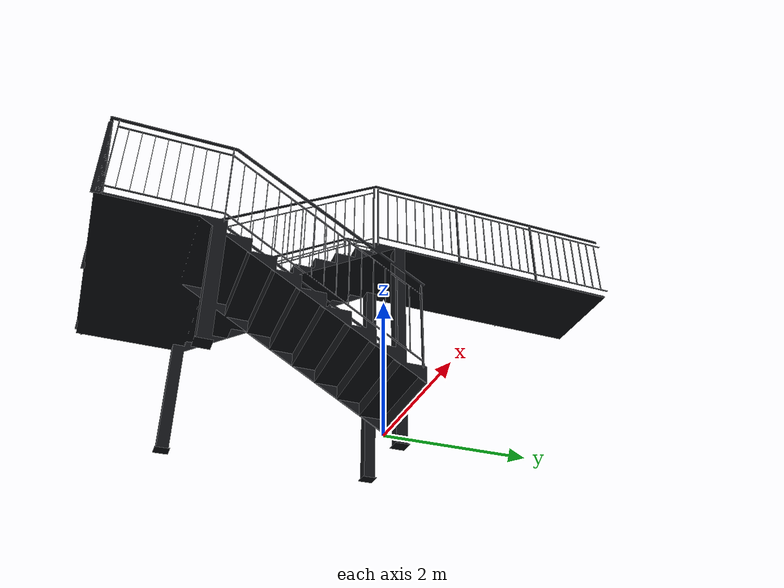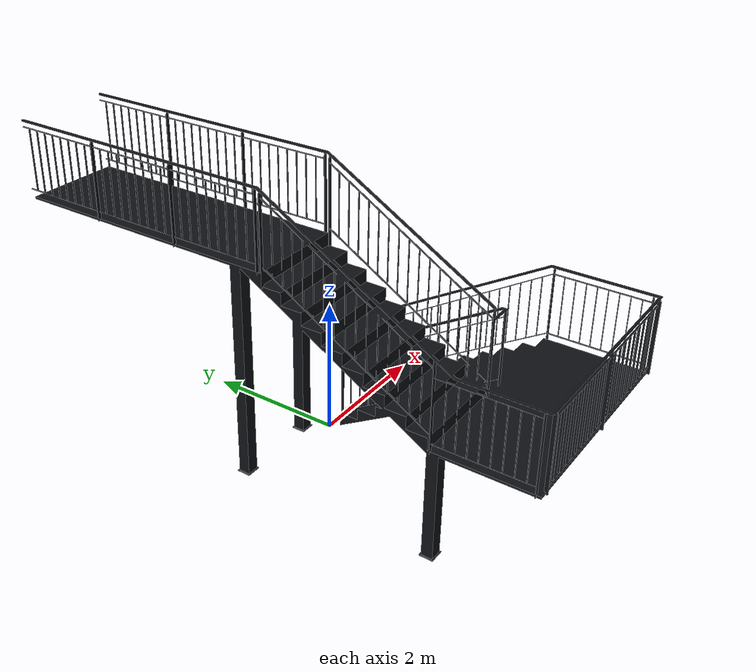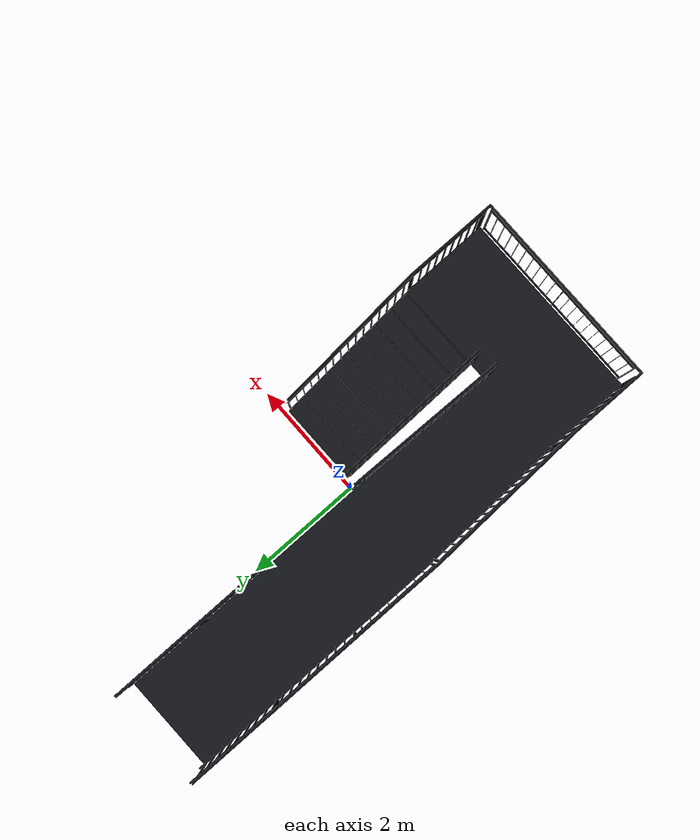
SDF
<?xml version="1.0" ?>
<sdf version="1.6">
  <model name="DigilabStairs">
    <static>true</static>
    <link name="cell_link">
      <visual name="visual">
        <geometry>
          <mesh>
            <uri>model://DigilabStairs/meshes/DigilabStairs.dae</uri>
          </mesh>
        </geometry>
      </visual>
      <collision name="collision">
        <geometry>
          <mesh>
            <uri>model://DigilabStairs/meshes/DigilabStairs.dae</uri>
          </mesh>
        </geometry>
      </collision>
    </link>
  </model>
</sdf>
